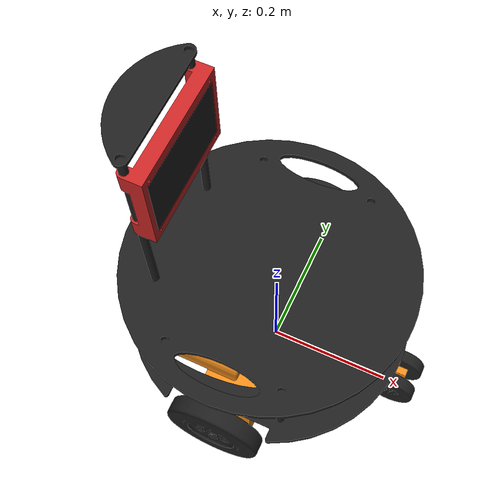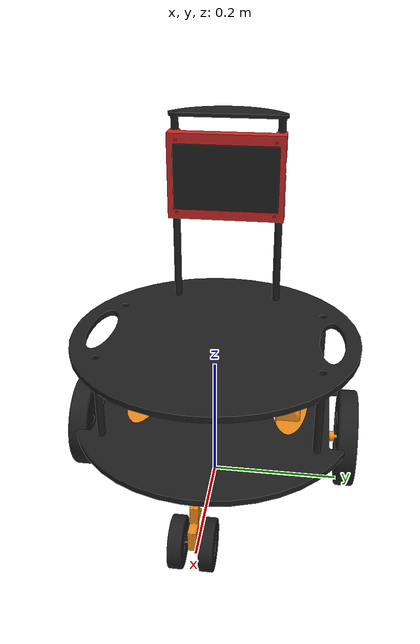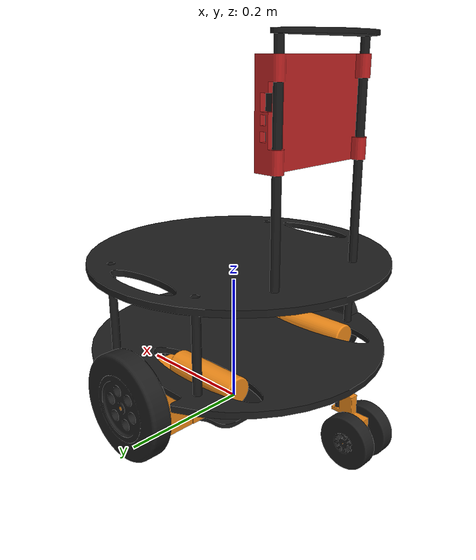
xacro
<?xml version="1.0" encoding="utf-8"?>
<robot name="eddiebot" xmlns:xacro="http://ros.org/wiki/xacro">
  <xacro:include filename="inertial_macros.xacro"/>
  <xacro:include filename="common_properties.xacro"/>

  <link name="base_footprint"/>

  <joint name="odom_joint" type="fixed">
    <parent link="odom"/>
    <child link="base_footprint"/>
    <origin xyz="0 0 0" rpy="0 0 0"/>
  </joint>
  <link name="odom"/>

  <link name="base_link" >
    <inertial>
      <origin
        xyz="6.40516959288934E-06 9.88983228679408E-08 0.0234596082010042"
        rpy="0 0 0" />
      <mass value="1.958" />
      <inertia
        ixx="0.01950247"
        ixy="0.0"
        ixz="-0.00020457"
        iyy="0.02561711"
        iyz="0.0"
        izz="0.04157802" />
    </inertial>
    <visual>
      <origin
        xyz="0 0 0"
        rpy="0 0 0" />
      <geometry>
        <mesh
          filename="package://eddiebot_gazebo/meshes/base_link.STL" />
      </geometry>
      <material name="light_black"/>
    </visual>
    <collision>
      <origin
        xyz="0 0 0"
        rpy="0 0 0" />
      <geometry>
        <box size="0.174 0.368 0.0762"/>
      </geometry>
    </collision>
  </link>
  <joint name="base_joint"
    type="fixed">
    <origin
      xyz="-0.00188188452335199 -0.000513601526006199 0.0670000000013061"
      rpy="0 0 0" />
    <parent
      link="base_footprint" />
    <child
      link="base_link" />
    <axis
      xyz="0 0 0" />
  </joint>
  <link name="base_top_link">
    <inertial>
      <origin
        xyz="0.000307130677125385 1.10241172166653E-07 0.134982649934056"
        rpy="0 0 0" />
      <mass
        value="1.724" />
      <inertia
        ixx="0.02119577"
        ixy="0.0"
        ixz="8.22e-06"
        iyy="0.02278843"
        iyz="0"
        izz="0.04313801" />
    </inertial>
    <visual>
      <origin
        xyz="0 0 0"
        rpy="0 0 0" />
      <geometry>
        <mesh
          filename="package://eddiebot_gazebo/meshes/base_top_link.STL" />
      </geometry>
      <material name="light_black"/>
    </visual>
    <collision>
      <origin
        xyz="0.015 0 0.07"
        rpy="0 0 0" />
      <geometry>
        <cylinder length="0.1356" radius="0.223"/>
      </geometry>
    </collision>
  </link>
  <joint name="base_top_joint"
    type="fixed">
    <origin
      xyz="-0.00879392436820687 0 0.03665"
      rpy="0 0 0" />
    <parent
      link="base_link" />
    <child
      link="base_top_link" />
    <axis
      xyz="0 0 0" />
  </joint>
  <link name="kinect_plate_link">
    <inertial>
      <origin
        xyz="-0.00741329248753544 -0.00100077555843242 0.219296009980792"
        rpy="0 0 0" />
      <mass
        value="0.272"/>
      <inertia
        ixx="0.00414787"
        ixy="-1e-08"
        ixz="0.00018088"
        iyy="0.00286104"
        iyz="2e-08"
        izz="0.00139722" />
    </inertial>
    <visual>
      <origin
        xyz="0 0 0"
        rpy="0 0 0" />
      <geometry>
        <mesh
          filename="package://eddiebot_gazebo/meshes/kinect_plate_link.STL" />
      </geometry>
      <material name="light_black"/>
    </visual>
    <collision>
      <origin
        xyz="0 0 0.15"
        rpy="0 0 0" />
      <geometry>
        <box size="0.065 0.188 0.310"/>
      </geometry>
    </collision>
  </link>
  <joint name="kinect_plate_joint"
    type="fixed">
    <origin
      xyz="-0.145492267835786 0.000999999997519332 0.1406"
      rpy="0 0 0" />
    <parent
      link="base_top_link" />
    <child
      link="kinect_plate_link" />
    <axis
      xyz="0 0 0" />
  </joint>
  <link name="motor_right_link">
    <inertial>
      <origin
        xyz="-9.69481684120234E-05 6.09797385771327E-05 0.0406295446299301"
        rpy="0 0 0" />
      <mass
        value="1.046" />
      <inertia
        ixx="0.00121916"
        ixy="-0.00026888"
        ixz="0.000388"
        iyy="0.00203021"
        iyz="0.00015076"
        izz="0.00209411" />
    </inertial>
    <visual>
      <origin
        xyz="0 0 0"
        rpy="0 0 0" />
      <geometry>
        <mesh
          filename="package://eddiebot_gazebo/meshes/motor_right_link.STL" />
      </geometry>

      <material name ="orange"/>
    </visual>
  </link>
  <joint name="motor_right_joint"
    type="fixed">
    <origin
      xyz="-0.02 -0.13727 -0.0320000000013062"
      rpy="0 0 0" />
    <parent
      link="base_link" />
    <child
      link="motor_right_link" />
    <axis
      xyz="0 0 0" />
  </joint>

  <link name="motor_left_link">
    <inertial>
      <origin
        xyz="-6.94825791193628E-06 -1.6822235779354E-05 0.0406295391896895"
        rpy="0 0 0" />
      <mass
        value="1.046" />
      <inertia
        ixx="0.00121916"
        ixy="0.00026888"
        ixz="-0.000388"
        iyy="0.00203021"
        iyz="0.00015076"
        izz="0.00209411" />
      </inertial>
      <visual>
      <origin
        xyz="0 0 0"
        rpy="0 0 0" />
      <geometry>
        <mesh
          filename="package://eddiebot_gazebo/meshes/motor_left_link.STL" />
      </geometry>
      <geometry>
        <cylinder radius="0.0765" length="0.0304"/>
      </geometry>
      <material name ="orange"/>
    </visual>
  </link>
  <joint name="motor_left_joint"
    type="fixed">
    <origin
      xyz="-0.02009 0.13727 -0.032"
      rpy="0 0 0" />
    <parent
      link="base_link" />
    <child
      link="motor_left_link" />
    <axis
      xyz="0 0 0" />
  </joint>

  <link name="battery_right_link">
    <inertial>
      <origin
        xyz="-3.826065107051E-07 8.65721453095908E-05 0.0322499971323714"
        rpy="0 0 0" />
      <mass
        value="2.5145" />
      <inertia
        ixx="0.00258294"
        ixy="-7.81e-06"
        ixz="0"
        iyy="0.00560653"
        iyz="0"
        izz="0.00642109" />
    </inertial>
    <visual>
      <origin
        xyz="0 0 0"
        rpy="0 0 0" />
      <geometry>
        <mesh
          filename="package://eddiebot_gazebo/meshes/battery_right_link.STL" />
      </geometry>
      <material name ="black"/>
    </visual>
  </link>
  <joint name="battery_right_joint"
    type="fixed">
    <origin
      xyz="-0.006876 0.0454279216675194 -0.032"
      rpy="0 0 0" />
    <parent
      link="base_link" />
    <child
      link="battery_right_link" />
    <axis
      xyz="0 0 0" />
  </joint>
  <link name="battery_left_link">
    <inertial>
      <origin
        xyz="-3.82608826103407E-07 -2.41552581282251E-06 0.0325000028300059"
        rpy="0 0 0" />
      <mass
        value="2.5145" />
      <inertia
        ixx="0.00258294"
        ixy="7.81e-06"
        ixz="0.0"
        iyy="0.00560653"
        iyz="0.0"
        izz="0.00642109" />
    </inertial>
    <visual>
      <origin
        xyz="0 0 0"
        rpy="0 0 0" />
      <geometry>
        <mesh
          filename="package://eddiebot_gazebo/meshes/battery_left_link.STL" />
      </geometry>
      <material name ="black"/>
    </visual>
  </link>
  <joint name="battery_left_joint"
    type="fixed">
    <origin
      xyz="-0.00657600000000001 -0.0452620783324806 -0.032"
      rpy="0 0 0" />
    <parent
      link="base_link" />
    <child
      link="battery_left_link" />
    <axis
      xyz="0 0 0" />
  </joint>

  <link name="screen_case_link">
    <inertial>
      <origin
        xyz="0.00999443346163434 -0.0018961166873752 0.0682350661912288"
        rpy="0 0 0" />
      <mass
        value="0.403" />
        <inertia
          ixx="0.00003227"
          ixy="0.0"
          ixz="0.0"
          iyy="0.00003227"
          iyz="0.0"
          izz="0.00002691" />
    </inertial>
    <visual>
      <origin
        xyz="0 0 0"
        rpy="0 0 0" />
      <geometry>
        <mesh
          filename="package://eddiebot_gazebo/meshes/screen_case_link.STL" />
      </geometry>
      <material name="red"/>
    </visual>
    <collision>
      <origin
        xyz="0 0 0"
        rpy="0 0 0" />
      <geometry>
        <mesh
          filename="package://eddiebot_gazebo/meshes/screen_case_link.STL" />
      </geometry>
    </collision>
  </link>
  <joint name="screen_case_joint" type="fixed">
    <origin
      xyz="0.00475 -0.000999999997519367 0.148601341910205"
      rpy="0 0 0" />
    <parent
      link="kinect_plate_link" />
    <child
      link="screen_case_link" />
    <axis
      xyz="0 1 0" />
  </joint>

  <link name="screen_link">
    <visual>
      <origin
        xyz="0 0 0"
        rpy="0 0 0" />
      <geometry>
        <mesh
          filename="package://eddiebot_gazebo/meshes/screen_link.STL" />
      </geometry>
      <material name="black"/>
    </visual>
  </link>
  <joint name="screen_joint"
    type="fixed">
    <origin
      xyz="0.0045 0 0.0154"
      rpy="3.1416 0 1.5708" />
    <parent
      link="screen_case_link" />
    <child
      link="screen_link" />
    <axis
      xyz="0 0 1" />
  </joint>

  <!-- Main wheels -->
  <!-- Wheel right -->
   <link name="wheel_right_link">
    <inertial>
      <origin
        xyz="-1.66533453693773E-16 6.50521303491303E-18 0.0124886849718492"
        rpy="0 0 0" />
      <mass
        value="0.388" />
      <inertia
        ixx="0.00065987"
        ixy="0"
        ixz="0"
        iyy="0.00065987"
        iyz="0"
        izz="0.00126426" />
    </inertial>
    <visual>
      <origin
        xyz="0 0 0"
        rpy="0 0 0" />
        <geometry>
          <mesh
            filename="package://eddiebot_gazebo/meshes/wheel_right_link.STL" />
        </geometry>
      <material name ="black"/>
    </visual>
    <collision>
      <origin
        xyz="0 0 0"
        rpy="0 0 0" />
      <geometry>
        <cylinder radius="0.0765" length="0.0304"/>
      </geometry>
    </collision>
  </link>

  <joint name="wheel_right_joint"
    type="continuous">
    <origin
      xyz="0.0132060756317932 -0.08677 0.0415"
      rpy="1.5707963267949 1.5707963267949 3.14159265358979" />
    <parent
      link="motor_right_link" />
    <child
      link="wheel_right_link" />
    <axis
      xyz="0 0 1" />
    <dynamics
      damping="0"
      friction="0" />
  </joint>

  <!-- Wheel left -->
  <link name="wheel_left_link">
    <inertial>
      <origin
        xyz="3.05311331771918E-16 -1.3834419720915E-16 0.0124886849718492"
        rpy="0 0 0" />
      <mass
        value="0.388" />
      <inertia
        ixx="0.00065987"
        ixy="0"
        ixz="0"
        iyy="0.00065987"
        iyz="0"
        izz="0.00126426" />
    </inertial>
    <visual>
      <origin
        xyz="0 0 0"
        rpy="0 0 0" />
      <geometry>
        <mesh
          filename="package://eddiebot_gazebo/meshes/wheel_left_link.STL" />
      </geometry>
      <material
        name="black">
      </material>
    </visual>
    <collision>
      <origin
        xyz="0 0 0"
        rpy="0 0 0" />
      <geometry>
        <cylinder radius="0.0765" length="0.0304"/>
      </geometry>
    </collision>
  </link>

  <joint name="wheel_left_joint"
    type="continuous">
    <origin
      xyz="0.0132060756317932 0.08677 0.0415"
      rpy="-1.5707963267949 -1.5707963267949 3.14159265358979" />
    <parent
      link="motor_left_link" />
    <child
      link="wheel_left_link" />
    <axis
      xyz="0 0 -1" />
    <dynamics
      damping="0"
      friction="0" />
  </joint>

  <!-- Caster wheels -->
  <!-- Wheels rear caster -->
  <link name="wheels_rear_caster_link">
    <inertial>
      <origin
        xyz="-9.07934302185609E-08 -1.14285528513003E-07 1.36766179853476E-07"
        rpy="0 0 0" />
      <mass
        value="0.038" />
      <inertia
        ixx="0.00003227"
        ixy="0.00000000"
        ixz="0.00000000"
        iyy="0.00003227"
        iyz="0.00000000"
        izz="0.00002691" />
    </inertial>
    <visual>
      <origin
        xyz="0 0 0"
        rpy="0 0 0" />
      <geometry>
        <mesh
          filename="package://eddiebot_gazebo/meshes/wheels_rear_caster_link.STL" />
      </geometry>
      <material name="black"/>
    </visual>
    <collision>
      <origin
        xyz="0 0 0"
        rpy="0 0 0" />
      <geometry>
        <cylinder radius="0.03696" length="0.06297"/>
      </geometry>
    </collision>
  </link>

  <joint name="wheels_rear_caster_joint"
    type="continuous">
    <origin
      xyz="0 0.032344678103671 0.041525"
      rpy="-1.5707963267949 0 1.5707963267949" />
    <parent
      link="base_rear_caster_link" />
    <child
      link="wheels_rear_caster_link" />
      <axis
        xyz="0 0 1" />
    <dynamics
      damping="0"
      friction="0" />
  </joint>

  <!-- Wheels front caster -->
  <link name="wheels_front_caster_link">
    <inertial>
      <origin
        xyz="-9.07934300520274E-08 -1.14285528568514E-07 1.36766177948749E-07"
        rpy="0 0 0" />
      <mass
        value="0.038" />
      <inertia
        ixx="0.00003227"
        ixy="0.00000000"
        ixz="0.00000000"
        iyy="0.00003226"
        iyz="0.00000000"
        izz="0.00002691" />
    </inertial>
    <visual>
      <origin
        xyz="0 0 0"
        rpy="0 0 0" />
      <geometry>
        <mesh
          filename="package://eddiebot_gazebo/meshes/wheels_rear_caster_link.STL" />
      </geometry>
      <material name="black"/>
    </visual>
    <collision>
      <origin
        xyz="0 0 0"
        rpy="0 0 0" />
      <geometry>
          <cylinder radius="0.03696" length="0.06297"/>
      </geometry>
    </collision>
  </link>

  <joint name="wheels_front_caster_joint"
    type="continuous">
    <limit effort="100" velocity="10"/>
    <origin
      xyz="-0.001 -0.0323446781036711 0.0415249999999999"
      rpy="-1.5707963267949 0 1.54020690641159" />
    <parent
      link="base_front_caster_link" />
    <child
      link="wheels_front_caster_link"/>
    <axis
      xyz="0 0 1" />
    <dynamics
    damping="0"
    friction="0" />
  </joint>

  <!-- Caster -->
  <link name="base_rear_caster_link">
    <inertial>
      <origin
        xyz="2.46370895906622E-10 0.0243123370668157 0.0165207797650175"
        rpy="0 0 0" />
      <mass
        value="0.076" />
      <inertia
        ixx="0.00003100"
        ixy="0.00000000"
        ixz="0.00000000"
        iyy="0.00002130"
        iyz="-0.00000933"
        izz="0.00001206" />
    </inertial>
    <visual>
      <origin
        xyz="0 0 0"
        rpy="0 0 0" />
      <geometry>
        <mesh
          filename="package://eddiebot_gazebo/meshes/base_rear_caster_link.STL" />
      </geometry>
      <material name ="orange"/>
    </visual>
  </link>
  <joint name="base_rear_caster_joint"
    type="continuous">
    <origin
      xyz="-0.200793924368207 0 0.0114749999986939"
      rpy="3.14159265358979 0 -1.5707963267949" />
    <parent
      link="base_link" />
    <child
      link="base_rear_caster_link" />
    <axis
      xyz="0 0 -1" />
  </joint>
  <link name="base_front_caster_link">
    <inertial>
      <origin
        xyz="-0.00074358459420179 -0.024300963323452 0.016520779818389"
        rpy="0 0 0" />
      <mass
        value="0.076" />
      <inertia
        ixx="0.00003099"
        ixy="-0.00000030"
        ixz="0.00000029"
        iyy="0.00002131"
        iyz="0.00000932"
        izz="0.00001206"  />
    </inertial>
    <visual>
      <origin
        xyz="0 0 0"
        rpy="0 0 0" />
      <geometry>
        <mesh
          filename="package://eddiebot_gazebo/meshes/base_front_caster_link.STL" />
      </geometry>
      <material name="orange"/>
    </visual>
  </link>
  <joint name="base_front_caster_joint"
    type="continuous">
    <origin
      xyz="0.187206075631793 0 0.0114749999986939"
      rpy="-3.14159265358979 0 -1.60138574717821" />
    <parent
      link="base_link" />
    <child
      link="base_front_caster_link" />
    <axis
      xyz="0 0 -1" />
  </joint>

  <!-- IMU -->
  <joint name="imu_joint" type="fixed">
    <parent link="base_link"/>
    <child link="imu_link"/>
    <origin xyz="-0.032 0 0.068" rpy="0 0 0"/>
  </joint>
  <link name="imu_link"/>

  <!-- LIDAR -->
<!-- Kinect -->

  <!-- GAZEBO frictions -->

  <gazebo reference="wheel_left_link">
    <mu1>0.9</mu1>
    <mu2>0.9</mu2>
    <kp>1000000.0</kp>
    <kd>100.0</kd>

    <minDepth>0.001</minDepth>
    <maxVel>1.0</maxVel>

  </gazebo>

  <gazebo reference="wheel_right_link">
    <mu1>0.9</mu1>
    <mu2>0.9</mu2>
    <kp>1000000.0</kp>
    <kd>100.0</kd>

    <minDepth>0.001</minDepth>
    <maxVel>1.0</maxVel>

  </gazebo>

  <gazebo reference="base_front_caster_link">
    <mu1>0.1</mu1>
    <mu2>0.1</mu2>
    <kp>1000000.0</kp>
    <kd>100.0</kd>
    <minDepth>0.001</minDepth>
    <maxVel>1.0</maxVel>

  </gazebo>

  <gazebo reference="base_rear_caster_link">
    <mu1>0.1</mu1>
    <mu2>0.1</mu2>
    <kp>1000000.0</kp>
    <kd>100.0</kd>
    <minDepth>0.001</minDepth>
    <maxVel>1.0</maxVel>

  </gazebo>

  <gazebo reference="wheels_front_caster_link">
    <mu1>0.1</mu1>
    <mu2>0.1</mu2>
    <kp>1000000.0</kp>
    <kd>100.0</kd>
    <minDepth>0.001</minDepth>
    <maxVel>1.0</maxVel>

  </gazebo>

  <gazebo reference="wheels_rear_caster_link">
    <mu1>0.1</mu1>
    <mu2>0.1</mu2>
    <kp>1000000.0</kp>
    <kd>100.0</kd>
    <minDepth>0.001</minDepth>
    <maxVel>1.0</maxVel>

  </gazebo>

  <ros2_control name="eddiebot_system" type="system">
    <hardware>
      <plugin>gz_ros2_control/GazeboSystem</plugin>
    </hardware>
    <joint name="wheel_left_joint">
      <command_interface name="velocity"/>
      <state_interface name="position"/>
      <state_interface name="velocity"/>
    </joint>
    <joint name="wheel_right_joint">
      <command_interface name="velocity"/>
      <state_interface name="position"/>
      <state_interface name="velocity"/>
    </joint>
  </ros2_control>
</robot>
